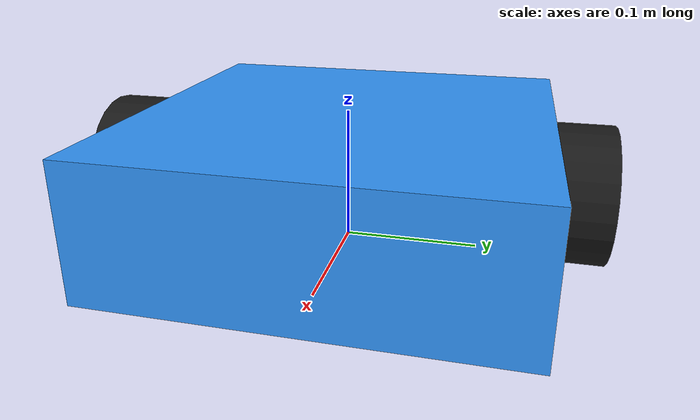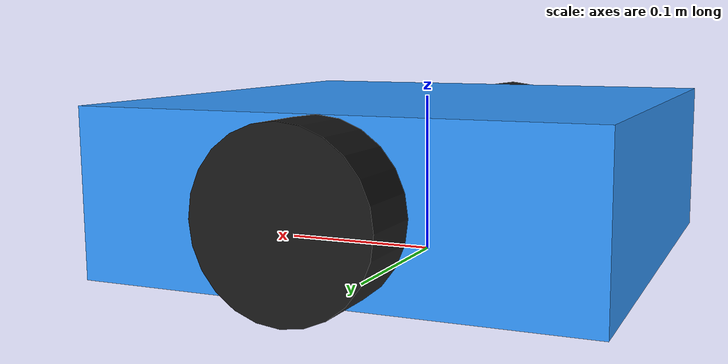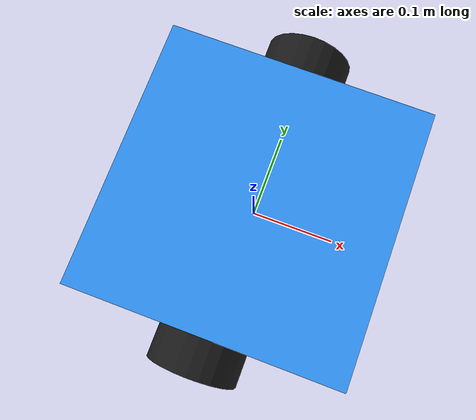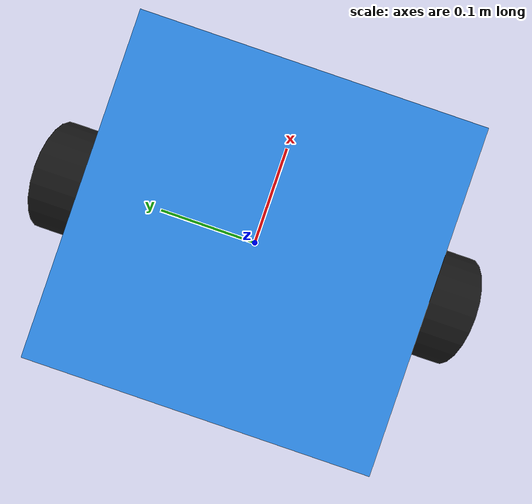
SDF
<?xml version="1.0" ?>
<sdf version="1.9">
  <model name="swarm_robot">
    <static>false</static>

    <!-- Chassis -->
    <link name="chassis">
      <pose>0 0 0.05 0 0 0</pose>
      <inertial>
        <mass>1.0</mass>
        <inertia>
          <ixx>0.002</ixx><iyy>0.002</iyy><izz>0.002</izz>
        </inertia>
      </inertial>
      <collision name="collision">
        <geometry>
          <box><size>0.3 0.3 0.1</size></box>
        </geometry>
      </collision>
      <visual name="visual">
        <geometry>
          <box><size>0.3 0.3 0.1</size></box>
        </geometry>
        <material>
          <ambient>0.2 0.6 1.0 1</ambient>
          <diffuse>0.2 0.6 1.0 1</diffuse>
        </material>
      </visual>
    </link>

    <!-- Left wheel -->
    <link name="left_wheel">
      <pose>0 0.17 0.05 -1.5708 0 0</pose>
      <inertial>
        <mass>0.1</mass>
        <inertia>
          <ixx>0.0001</ixx><iyy>0.0001</iyy><izz>0.0001</izz>
        </inertia>
      </inertial>
      <collision name="collision">
        <geometry>
          <cylinder><radius>0.05</radius><length>0.04</length></cylinder>
        </geometry>
      </collision>
      <visual name="visual">
        <geometry>
          <cylinder><radius>0.05</radius><length>0.04</length></cylinder>
        </geometry>
        <material>
          <ambient>0.1 0.1 0.1 1</ambient>
          <diffuse>0.1 0.1 0.1 1</diffuse>
        </material>
      </visual>
    </link>

    <!-- Right wheel -->
    <link name="right_wheel">
      <pose>0 -0.17 0.05 -1.5708 0 0</pose>
      <inertial>
        <mass>0.1</mass>
        <inertia>
          <ixx>0.0001</ixx><iyy>0.0001</iyy><izz>0.0001</izz>
        </inertia>
      </inertial>
      <collision name="collision">
        <geometry>
          <cylinder><radius>0.05</radius><length>0.04</length></cylinder>
        </geometry>
      </collision>
      <visual name="visual">
        <geometry>
          <cylinder><radius>0.05</radius><length>0.04</length></cylinder>
        </geometry>
        <material>
          <ambient>0.1 0.1 0.1 1</ambient>
          <diffuse>0.1 0.1 0.1 1</diffuse>
        </material>
      </visual>
    </link>

    <!-- Caster (rear support) -->
    <link name="caster">
      <pose>-0.1 0 0.025 0 0 0</pose>
      <inertial>
        <mass>0.05</mass>
        <inertia>
          <ixx>0.00001</ixx><iyy>0.00001</iyy><izz>0.00001</izz>
        </inertia>
      </inertial>
      <collision name="collision">
        <geometry>
          <sphere><radius>0.025</radius></sphere>
        </geometry>
        <surface>
          <friction>
            <ode><mu>0.0</mu><mu2>0.0</mu2></ode>
          </friction>
        </surface>
      </collision>
    </link>

    <!-- Joints -->
    <joint name="left_wheel_joint" type="revolute">
      <parent>chassis</parent>
      <child>left_wheel</child>
      <axis><xyz>0 0 1</xyz></axis>
    </joint>

    <joint name="right_wheel_joint" type="revolute">
      <parent>chassis</parent>
      <child>right_wheel</child>
      <axis><xyz>0 0 1</xyz></axis>
    </joint>

    <joint name="caster_joint" type="ball">
      <parent>chassis</parent>
      <child>caster</child>
    </joint>

    <!-- Diff drive plugin -->
    <plugin filename="gz-sim-diff-drive-system" name="gz::sim::systems::DiffDrive">
      <left_joint>left_wheel_joint</left_joint>
      <right_joint>right_wheel_joint</right_joint>
      <wheel_separation>0.34</wheel_separation>
      <wheel_radius>0.05</wheel_radius>
      <max_linear_acceleration>1.0</max_linear_acceleration>
      <topic>cmd_vel</topic>
      <odom_topic>odom</odom_topic>
      <tf_topic>tf</tf_topic>
      <frame_id>odom</frame_id>
      <child_frame_id>base_link</child_frame_id>
      <odom_publish_frequency>20</odom_publish_frequency>
    </plugin>
  </model>
</sdf>
